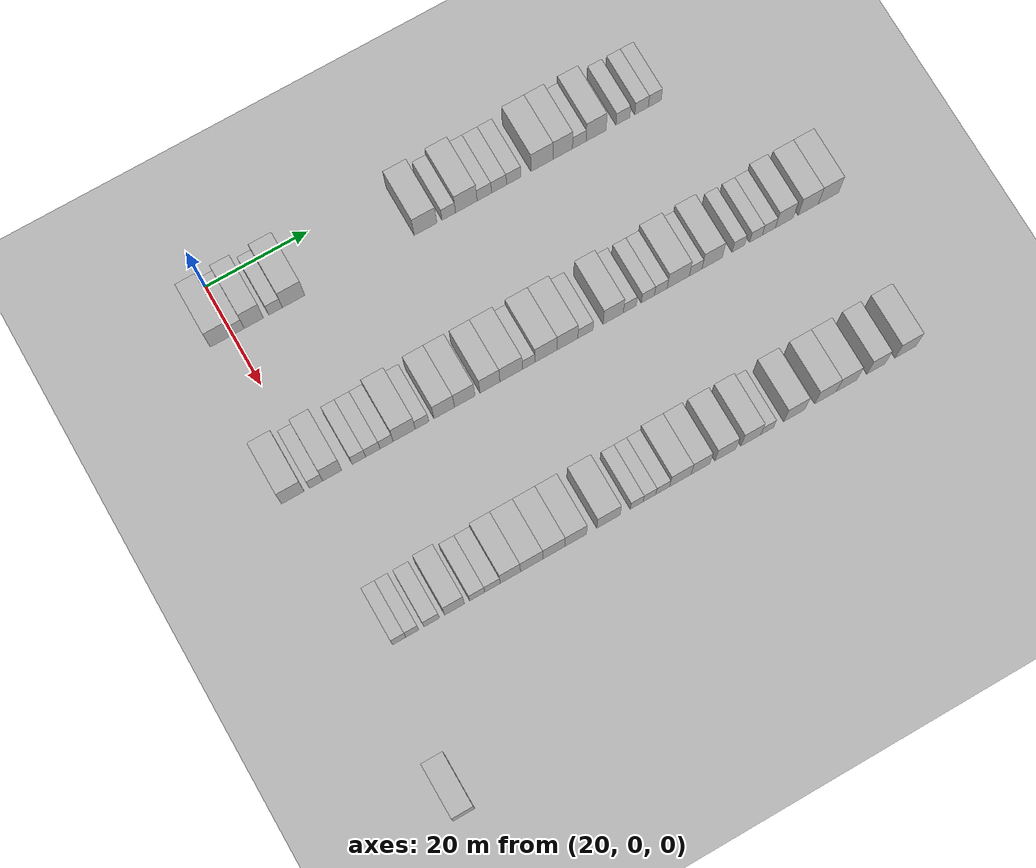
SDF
<sdf version="1.6">
 <world name="default">
  <include><name>ground_plane_1</name><uri>model://HANNAS_ground_plane</uri></include>
  <include>
   <name>ground_plane_2</name>
   <uri>model://HANNAS_ground_plane</uri>
   <pose>100 0 0  0 0 0</pose>
  </include>
  <model name="building_107">
   <static>1</static>
   <pose>25.0000 -2.3932 0 0.000000 0.000000 0.000000</pose>
   <link name="link">
    <pose>0 0 4.50 0 0 0</pose>
    <collision name="collision"><geometry><box><size>10.0000 3.8231 9.0000</size></box></geometry></collision>
    <visual name="visual">
     <cast_shadows>0</cast_shadows>
     <geometry><box><size>10.0000 3.8231 9.0000</size></box></geometry>
     <material>
      <script>
       <uri>model://HANNAS_wall/materials/scripts</uri>
       <uri>model://HANNAS_wall/materials/textures</uri>
       <name>vrc/HANNAS_wall</name>
      </script>
     </material>
    </visual>
   </link>
  </model>
  <model name="building_108">
   <static>1</static>
   <pose>25.0000 0.8979 0 0.000000 0.000000 0.000000</pose>
   <link name="link">
    <pose>0 0 3.00 0 0 0</pose>
    <collision name="collision"><geometry><box><size>10.0000 2.7591 6.0000</size></box></geometry></collision>
    <visual name="visual">
     <cast_shadows>0</cast_shadows>
     <geometry><box><size>10.0000 2.7591 6.0000</size></box></geometry>
     <material>
      <script>
       <uri>model://HANNAS_wall/materials/scripts</uri>
       <uri>model://HANNAS_wall/materials/textures</uri>
       <name>vrc/HANNAS_wall</name>
      </script>
     </material>
    </visual>
   </link>
  </model>
  <model name="building_109">
   <static>1</static>
   <pose>25.0000 4.1473 0 0.000000 0.000000 0.000000</pose>
   <link name="link">
    <pose>0 0 4.50 0 0 0</pose>
    <collision name="collision"><geometry><box><size>10.0000 3.7397 9.0000</size></box></geometry></collision>
    <visual name="visual">
     <cast_shadows>0</cast_shadows>
     <geometry><box><size>10.0000 3.7397 9.0000</size></box></geometry>
     <material>
      <script>
       <uri>model://HANNAS_wall/materials/scripts</uri>
       <uri>model://HANNAS_wall/materials/textures</uri>
       <name>vrc/HANNAS_wall</name>
      </script>
     </material>
    </visual>
   </link>
  </model>
  <model name="building_110">
   <static>1</static>
   <pose>25.0000 8.3387 0 0.000000 0.000000 0.000000</pose>
   <link name="link">
    <pose>0 0 3.00 0 0 0</pose>
    <collision name="collision"><geometry><box><size>10.0000 2.6432 6.0000</size></box></geometry></collision>
    <visual name="visual">
     <cast_shadows>0</cast_shadows>
     <geometry><box><size>10.0000 2.6432 6.0000</size></box></geometry>
     <material>
      <script>
       <uri>model://HANNAS_wall/materials/scripts</uri>
       <uri>model://HANNAS_wall/materials/textures</uri>
       <name>vrc/HANNAS_wall</name>
      </script>
     </material>
    </visual>
   </link>
  </model>
  <model name="building_111">
   <static>1</static>
   <pose>25.0000 11.8502 0 0.000000 0.000000 0.000000</pose>
   <link name="link">
    <pose>0 0 4.50 0 0 0</pose>
    <collision name="collision"><geometry><box><size>10.0000 4.3797 9.0000</size></box></geometry></collision>
    <visual name="visual">
     <cast_shadows>0</cast_shadows>
     <geometry><box><size>10.0000 4.3797 9.0000</size></box></geometry>
     <material>
      <script>
       <uri>model://HANNAS_wall/materials/scripts</uri>
       <uri>model://HANNAS_wall/materials/textures</uri>
       <name>vrc/HANNAS_wall</name>
      </script>
     </material>
    </visual>
   </link>
  </model>
  <model name="building_112">
   <static>1</static>
   <pose>25.0000 37.7808 0 0.000000 0.000000 0.000000</pose>
   <link name="link">
    <pose>0 0 4.50 0 0 0</pose>
    <collision name="collision"><geometry><box><size>10.0000 4.4939 9.0000</size></box></geometry></collision>
    <visual name="visual">
     <cast_shadows>0</cast_shadows>
     <geometry><box><size>10.0000 4.4939 9.0000</size></box></geometry>
     <material>
      <script>
       <uri>model://HANNAS_wall/materials/scripts</uri>
       <uri>model://HANNAS_wall/materials/textures</uri>
       <name>vrc/HANNAS_wall</name>
      </script>
     </material>
    </visual>
   </link>
  </model>
  <model name="building_113">
   <static>1</static>
   <pose>25.0000 42.3702 0 0.000000 0.000000 0.000000</pose>
   <link name="link">
    <pose>0 0 3.00 0 0 0</pose>
    <collision name="collision"><geometry><box><size>10.0000 2.6850 6.0000</size></box></geometry></collision>
    <visual name="visual">
     <cast_shadows>0</cast_shadows>
     <geometry><box><size>10.0000 2.6850 6.0000</size></box></geometry>
     <material>
      <script>
       <uri>model://HANNAS_wall/materials/scripts</uri>
       <uri>model://HANNAS_wall/materials/textures</uri>
       <name>vrc/HANNAS_wall</name>
      </script>
     </material>
    </visual>
   </link>
  </model>
  <model name="building_114">
   <static>1</static>
   <pose>25.0000 45.8587 0 0.000000 0.000000 0.000000</pose>
   <link name="link">
    <pose>0 0 4.50 0 0 0</pose>
    <collision name="collision"><geometry><box><size>10.0000 4.2920 9.0000</size></box></geometry></collision>
    <visual name="visual">
     <cast_shadows>0</cast_shadows>
     <geometry><box><size>10.0000 4.2920 9.0000</size></box></geometry>
     <material>
      <script>
       <uri>model://HANNAS_wall/materials/scripts</uri>
       <uri>model://HANNAS_wall/materials/textures</uri>
       <name>vrc/HANNAS_wall</name>
      </script>
     </material>
    </visual>
   </link>
  </model>
  <model name="building_115">
   <static>1</static>
   <pose>25.0000 49.4416 0 0.000000 0.000000 0.000000</pose>
   <link name="link">
    <pose>0 0 3.00 0 0 0</pose>
    <collision name="collision"><geometry><box><size>10.0000 2.8737 6.0000</size></box></geometry></collision>
    <visual name="visual">
     <cast_shadows>0</cast_shadows>
     <geometry><box><size>10.0000 2.8737 6.0000</size></box></geometry>
     <material>
      <script>
       <uri>model://HANNAS_wall/materials/scripts</uri>
       <uri>model://HANNAS_wall/materials/textures</uri>
       <name>vrc/HANNAS_wall</name>
      </script>
     </material>
    </visual>
   </link>
  </model>
  <model name="building_116">
   <static>1</static>
   <pose>25.0000 52.3666 0 0.000000 0.000000 0.000000</pose>
   <link name="link">
    <pose>0 0 3.00 0 0 0</pose>
    <collision name="collision"><geometry><box><size>10.0000 2.9764 6.0000</size></box></geometry></collision>
    <visual name="visual">
     <cast_shadows>0</cast_shadows>
     <geometry><box><size>10.0000 2.9764 6.0000</size></box></geometry>
     <material>
      <script>
       <uri>model://HANNAS_wall/materials/scripts</uri>
       <uri>model://HANNAS_wall/materials/textures</uri>
       <name>vrc/HANNAS_wall</name>
      </script>
     </material>
    </visual>
   </link>
  </model>
  <model name="building_117">
   <static>1</static>
   <pose>25.0000 55.3004 0 0.000000 0.000000 0.000000</pose>
   <link name="link">
    <pose>0 0 3.00 0 0 0</pose>
    <collision name="collision"><geometry><box><size>10.0000 2.8911 6.0000</size></box></geometry></collision>
    <visual name="visual">
     <cast_shadows>0</cast_shadows>
     <geometry><box><size>10.0000 2.8911 6.0000</size></box></geometry>
     <material>
      <script>
       <uri>model://HANNAS_wall/materials/scripts</uri>
       <uri>model://HANNAS_wall/materials/textures</uri>
       <name>vrc/HANNAS_wall</name>
      </script>
     </material>
    </visual>
   </link>
  </model>
  <model name="building_118">
   <static>1</static>
   <pose>25.0000 60.9635 0 0.000000 0.000000 0.000000</pose>
   <link name="link">
    <pose>0 0 4.50 0 0 0</pose>
    <collision name="collision"><geometry><box><size>10.0000 4.4350 9.0000</size></box></geometry></collision>
    <visual name="visual">
     <cast_shadows>0</cast_shadows>
     <geometry><box><size>10.0000 4.4350 9.0000</size></box></geometry>
     <material>
      <script>
       <uri>model://HANNAS_wall/materials/scripts</uri>
       <uri>model://HANNAS_wall/materials/textures</uri>
       <name>vrc/HANNAS_wall</name>
      </script>
     </material>
    </visual>
   </link>
  </model>
  <model name="building_119">
   <static>1</static>
   <pose>25.0000 65.1294 0 0.000000 0.000000 0.000000</pose>
   <link name="link">
    <pose>0 0 4.50 0 0 0</pose>
    <collision name="collision"><geometry><box><size>10.0000 3.8967 9.0000</size></box></geometry></collision>
    <visual name="visual">
     <cast_shadows>0</cast_shadows>
     <geometry><box><size>10.0000 3.8967 9.0000</size></box></geometry>
     <material>
      <script>
       <uri>model://HANNAS_wall/materials/scripts</uri>
       <uri>model://HANNAS_wall/materials/textures</uri>
       <name>vrc/HANNAS_wall</name>
      </script>
     </material>
    </visual>
   </link>
  </model>
  <model name="building_120">
   <static>1</static>
   <pose>25.0000 68.4488 0 0.000000 0.000000 0.000000</pose>
   <link name="link">
    <pose>0 0 3.00 0 0 0</pose>
    <collision name="collision"><geometry><box><size>10.0000 2.7421 6.0000</size></box></geometry></collision>
    <visual name="visual">
     <cast_shadows>0</cast_shadows>
     <geometry><box><size>10.0000 2.7421 6.0000</size></box></geometry>
     <material>
      <script>
       <uri>model://HANNAS_wall/materials/scripts</uri>
       <uri>model://HANNAS_wall/materials/textures</uri>
       <name>vrc/HANNAS_wall</name>
      </script>
     </material>
    </visual>
   </link>
  </model>
  <model name="building_121">
   <static>1</static>
   <pose>25.0000 71.8371 0 0.000000 0.000000 0.000000</pose>
   <link name="link">
    <pose>0 0 4.50 0 0 0</pose>
    <collision name="collision"><geometry><box><size>10.0000 4.0346 9.0000</size></box></geometry></collision>
    <visual name="visual">
     <cast_shadows>0</cast_shadows>
     <geometry><box><size>10.0000 4.0346 9.0000</size></box></geometry>
     <material>
      <script>
       <uri>model://HANNAS_wall/materials/scripts</uri>
       <uri>model://HANNAS_wall/materials/textures</uri>
       <name>vrc/HANNAS_wall</name>
      </script>
     </material>
    </visual>
   </link>
  </model>
  <model name="building_122">
   <static>1</static>
   <pose>25.0000 77.2639 0 0.000000 0.000000 0.000000</pose>
   <link name="link">
    <pose>0 0 3.00 0 0 0</pose>
    <collision name="collision"><geometry><box><size>10.0000 2.8190 6.0000</size></box></geometry></collision>
    <visual name="visual">
     <cast_shadows>0</cast_shadows>
     <geometry><box><size>10.0000 2.8190 6.0000</size></box></geometry>
     <material>
      <script>
       <uri>model://HANNAS_wall/materials/scripts</uri>
       <uri>model://HANNAS_wall/materials/textures</uri>
       <name>vrc/HANNAS_wall</name>
      </script>
     </material>
    </visual>
   </link>
  </model>
  <model name="building_123">
   <static>1</static>
   <pose>25.0000 81.0404 0 0.000000 0.000000 0.000000</pose>
   <link name="link">
    <pose>0 0 3.00 0 0 0</pose>
    <collision name="collision"><geometry><box><size>10.0000 2.7340 6.0000</size></box></geometry></collision>
    <visual name="visual">
     <cast_shadows>0</cast_shadows>
     <geometry><box><size>10.0000 2.7340 6.0000</size></box></geometry>
     <material>
      <script>
       <uri>model://HANNAS_wall/materials/scripts</uri>
       <uri>model://HANNAS_wall/materials/textures</uri>
       <name>vrc/HANNAS_wall</name>
      </script>
     </material>
    </visual>
   </link>
  </model>
  <model name="building_124">
   <static>1</static>
   <pose>25.0000 83.7193 0 0.000000 0.000000 0.000000</pose>
   <link name="link">
    <pose>0 0 3.00 0 0 0</pose>
    <collision name="collision"><geometry><box><size>10.0000 2.6240 6.0000</size></box></geometry></collision>
    <visual name="visual">
     <cast_shadows>0</cast_shadows>
     <geometry><box><size>10.0000 2.6240 6.0000</size></box></geometry>
     <material>
      <script>
       <uri>model://HANNAS_wall/materials/scripts</uri>
       <uri>model://HANNAS_wall/materials/textures</uri>
       <name>vrc/HANNAS_wall</name>
      </script>
     </material>
    </visual>
   </link>
  </model>
  <model name="building_316">
   <static>1</static>
   <pose>55.0000 -4.5520 0 0.000000 0.000000 0.000000</pose>
   <link name="link">
    <pose>0 0 4.50 0 0 0</pose>
    <collision name="collision"><geometry><box><size>10.0000 4.3204 9.0000</size></box></geometry></collision>
    <visual name="visual">
     <cast_shadows>0</cast_shadows>
     <geometry><box><size>10.0000 4.3204 9.0000</size></box></geometry>
     <material>
      <script>
       <uri>model://HANNAS_wall/materials/scripts</uri>
       <uri>model://HANNAS_wall/materials/textures</uri>
       <name>vrc/HANNAS_wall</name>
      </script>
     </material>
    </visual>
   </link>
  </model>
  <model name="building_317">
   <static>1</static>
   <pose>55.0000 -0.1175 0 0.000000 0.000000 0.000000</pose>
   <link name="link">
    <pose>0 0 3.00 0 0 0</pose>
    <collision name="collision"><geometry><box><size>10.0000 2.5487 6.0000</size></box></geometry></collision>
    <visual name="visual">
     <cast_shadows>0</cast_shadows>
     <geometry><box><size>10.0000 2.5487 6.0000</size></box></geometry>
     <material>
      <script>
       <uri>model://HANNAS_wall/materials/scripts</uri>
       <uri>model://HANNAS_wall/materials/textures</uri>
       <name>vrc/HANNAS_wall</name>
      </script>
     </material>
    </visual>
   </link>
  </model>
  <model name="building_318">
   <static>1</static>
   <pose>55.0000 2.9823 0 0.000000 0.000000 0.000000</pose>
   <link name="link">
    <pose>0 0 4.50 0 0 0</pose>
    <collision name="collision"><geometry><box><size>10.0000 3.6508 9.0000</size></box></geometry></collision>
    <visual name="visual">
     <cast_shadows>0</cast_shadows>
     <geometry><box><size>10.0000 3.6508 9.0000</size></box></geometry>
     <material>
      <script>
       <uri>model://HANNAS_wall/materials/scripts</uri>
       <uri>model://HANNAS_wall/materials/textures</uri>
       <name>vrc/HANNAS_wall</name>
      </script>
     </material>
    </visual>
   </link>
  </model>
  <model name="building_319">
   <static>1</static>
   <pose>55.0000 8.0975 0 0.000000 0.000000 0.000000</pose>
   <link name="link">
    <pose>0 0 3.00 0 0 0</pose>
    <collision name="collision"><geometry><box><size>10.0000 2.5796 6.0000</size></box></geometry></collision>
    <visual name="visual">
     <cast_shadows>0</cast_shadows>
     <geometry><box><size>10.0000 2.5796 6.0000</size></box></geometry>
     <material>
      <script>
       <uri>model://HANNAS_wall/materials/scripts</uri>
       <uri>model://HANNAS_wall/materials/textures</uri>
       <name>vrc/HANNAS_wall</name>
      </script>
     </material>
    </visual>
   </link>
  </model>
  <model name="building_320">
   <static>1</static>
   <pose>55.0000 10.7872 0 0.000000 0.000000 0.000000</pose>
   <link name="link">
    <pose>0 0 3.00 0 0 0</pose>
    <collision name="collision"><geometry><box><size>10.0000 2.7998 6.0000</size></box></geometry></collision>
    <visual name="visual">
     <cast_shadows>0</cast_shadows>
     <geometry><box><size>10.0000 2.7998 6.0000</size></box></geometry>
     <material>
      <script>
       <uri>model://HANNAS_wall/materials/scripts</uri>
       <uri>model://HANNAS_wall/materials/textures</uri>
       <name>vrc/HANNAS_wall</name>
      </script>
     </material>
    </visual>
   </link>
  </model>
  <model name="building_321">
   <static>1</static>
   <pose>55.0000 13.4524 0 0.000000 0.000000 0.000000</pose>
   <link name="link">
    <pose>0 0 3.00 0 0 0</pose>
    <collision name="collision"><geometry><box><size>10.0000 2.5305 6.0000</size></box></geometry></collision>
    <visual name="visual">
     <cast_shadows>0</cast_shadows>
     <geometry><box><size>10.0000 2.5305 6.0000</size></box></geometry>
     <material>
      <script>
       <uri>model://HANNAS_wall/materials/scripts</uri>
       <uri>model://HANNAS_wall/materials/textures</uri>
       <name>vrc/HANNAS_wall</name>
      </script>
     </material>
    </visual>
   </link>
  </model>
  <model name="building_322">
   <static>1</static>
   <pose>55.0000 16.8531 0 0.000000 0.000000 0.000000</pose>
   <link name="link">
    <pose>0 0 4.50 0 0 0</pose>
    <collision name="collision"><geometry><box><size>10.0000 4.2708 9.0000</size></box></geometry></collision>
    <visual name="visual">
     <cast_shadows>0</cast_shadows>
     <geometry><box><size>10.0000 4.2708 9.0000</size></box></geometry>
     <material>
      <script>
       <uri>model://HANNAS_wall/materials/scripts</uri>
       <uri>model://HANNAS_wall/materials/textures</uri>
       <name>vrc/HANNAS_wall</name>
      </script>
     </material>
    </visual>
   </link>
  </model>
  <model name="building_323">
   <static>1</static>
   <pose>55.0000 20.2973 0 0.000000 0.000000 0.000000</pose>
   <link name="link">
    <pose>0 0 3.00 0 0 0</pose>
    <collision name="collision"><geometry><box><size>10.0000 2.6176 6.0000</size></box></geometry></collision>
    <visual name="visual">
     <cast_shadows>0</cast_shadows>
     <geometry><box><size>10.0000 2.6176 6.0000</size></box></geometry>
     <material>
      <script>
       <uri>model://HANNAS_wall/materials/scripts</uri>
       <uri>model://HANNAS_wall/materials/textures</uri>
       <name>vrc/HANNAS_wall</name>
      </script>
     </material>
    </visual>
   </link>
  </model>
  <model name="building_324">
   <static>1</static>
   <pose>55.0000 24.5956 0 0.000000 0.000000 0.000000</pose>
   <link name="link">
    <pose>0 0 4.50 0 0 0</pose>
    <collision name="collision"><geometry><box><size>10.0000 3.9791 9.0000</size></box></geometry></collision>
    <visual name="visual">
     <cast_shadows>0</cast_shadows>
     <geometry><box><size>10.0000 3.9791 9.0000</size></box></geometry>
     <material>
      <script>
       <uri>model://HANNAS_wall/materials/scripts</uri>
       <uri>model://HANNAS_wall/materials/textures</uri>
       <name>vrc/HANNAS_wall</name>
      </script>
     </material>
    </visual>
   </link>
  </model>
  <model name="building_325">
   <static>1</static>
   <pose>55.0000 28.5663 0 0.000000 0.000000 0.000000</pose>
   <link name="link">
    <pose>0 0 4.50 0 0 0</pose>
    <collision name="collision"><geometry><box><size>10.0000 3.9622 9.0000</size></box></geometry></collision>
    <visual name="visual">
     <cast_shadows>0</cast_shadows>
     <geometry><box><size>10.0000 3.9622 9.0000</size></box></geometry>
     <material>
      <script>
       <uri>model://HANNAS_wall/materials/scripts</uri>
       <uri>model://HANNAS_wall/materials/textures</uri>
       <name>vrc/HANNAS_wall</name>
      </script>
     </material>
    </visual>
   </link>
  </model>
  <model name="building_326">
   <static>1</static>
   <pose>55.0000 33.4936 0 0.000000 0.000000 0.000000</pose>
   <link name="link">
    <pose>0 0 4.50 0 0 0</pose>
    <collision name="collision"><geometry><box><size>10.0000 3.8924 9.0000</size></box></geometry></collision>
    <visual name="visual">
     <cast_shadows>0</cast_shadows>
     <geometry><box><size>10.0000 3.8924 9.0000</size></box></geometry>
     <material>
      <script>
       <uri>model://HANNAS_wall/materials/scripts</uri>
       <uri>model://HANNAS_wall/materials/textures</uri>
       <name>vrc/HANNAS_wall</name>
      </script>
     </material>
    </visual>
   </link>
  </model>
  <model name="building_327">
   <static>1</static>
   <pose>55.0000 37.6419 0 0.000000 0.000000 0.000000</pose>
   <link name="link">
    <pose>0 0 4.50 0 0 0</pose>
    <collision name="collision"><geometry><box><size>10.0000 4.4041 9.0000</size></box></geometry></collision>
    <visual name="visual">
     <cast_shadows>0</cast_shadows>
     <geometry><box><size>10.0000 4.4041 9.0000</size></box></geometry>
     <material>
      <script>
       <uri>model://HANNAS_wall/materials/scripts</uri>
       <uri>model://HANNAS_wall/materials/textures</uri>
       <name>vrc/HANNAS_wall</name>
      </script>
     </material>
    </visual>
   </link>
  </model>
  <model name="building_328">
   <static>1</static>
   <pose>55.0000 41.0681 0 0.000000 0.000000 0.000000</pose>
   <link name="link">
    <pose>0 0 3.00 0 0 0</pose>
    <collision name="collision"><geometry><box><size>10.0000 2.4485 6.0000</size></box></geometry></collision>
    <visual name="visual">
     <cast_shadows>0</cast_shadows>
     <geometry><box><size>10.0000 2.4485 6.0000</size></box></geometry>
     <material>
      <script>
       <uri>model://HANNAS_wall/materials/scripts</uri>
       <uri>model://HANNAS_wall/materials/textures</uri>
       <name>vrc/HANNAS_wall</name>
      </script>
     </material>
    </visual>
   </link>
  </model>
  <model name="building_329">
   <static>1</static>
   <pose>55.0000 44.4635 0 0.000000 0.000000 0.000000</pose>
   <link name="link">
    <pose>0 0 4.50 0 0 0</pose>
    <collision name="collision"><geometry><box><size>10.0000 4.3422 9.0000</size></box></geometry></collision>
    <visual name="visual">
     <cast_shadows>0</cast_shadows>
     <geometry><box><size>10.0000 4.3422 9.0000</size></box></geometry>
     <material>
      <script>
       <uri>model://HANNAS_wall/materials/scripts</uri>
       <uri>model://HANNAS_wall/materials/textures</uri>
       <name>vrc/HANNAS_wall</name>
      </script>
     </material>
    </visual>
   </link>
  </model>
  <model name="building_330">
   <static>1</static>
   <pose>55.0000 48.6864 0 0.000000 0.000000 0.000000</pose>
   <link name="link">
    <pose>0 0 4.50 0 0 0</pose>
    <collision name="collision"><geometry><box><size>10.0000 4.1036 9.0000</size></box></geometry></collision>
    <visual name="visual">
     <cast_shadows>0</cast_shadows>
     <geometry><box><size>10.0000 4.1036 9.0000</size></box></geometry>
     <material>
      <script>
       <uri>model://HANNAS_wall/materials/scripts</uri>
       <uri>model://HANNAS_wall/materials/textures</uri>
       <name>vrc/HANNAS_wall</name>
      </script>
     </material>
    </visual>
   </link>
  </model>
  <model name="building_331">
   <static>1</static>
   <pose>55.0000 52.2373 0 0.000000 0.000000 0.000000</pose>
   <link name="link">
    <pose>0 0 3.00 0 0 0</pose>
    <collision name="collision"><geometry><box><size>10.0000 2.9982 6.0000</size></box></geometry></collision>
    <visual name="visual">
     <cast_shadows>0</cast_shadows>
     <geometry><box><size>10.0000 2.9982 6.0000</size></box></geometry>
     <material>
      <script>
       <uri>model://HANNAS_wall/materials/scripts</uri>
       <uri>model://HANNAS_wall/materials/textures</uri>
       <name>vrc/HANNAS_wall</name>
      </script>
     </material>
    </visual>
   </link>
  </model>
  <model name="building_332">
   <static>1</static>
   <pose>55.0000 57.7343 0 0.000000 0.000000 0.000000</pose>
   <link name="link">
    <pose>0 0 4.50 0 0 0</pose>
    <collision name="collision"><geometry><box><size>10.0000 3.9958 9.0000</size></box></geometry></collision>
    <visual name="visual">
     <cast_shadows>0</cast_shadows>
     <geometry><box><size>10.0000 3.9958 9.0000</size></box></geometry>
     <material>
      <script>
       <uri>model://HANNAS_wall/materials/scripts</uri>
       <uri>model://HANNAS_wall/materials/textures</uri>
       <name>vrc/HANNAS_wall</name>
      </script>
     </material>
    </visual>
   </link>
  </model>
  <model name="building_333">
   <static>1</static>
   <pose>55.0000 61.0189 0 0.000000 0.000000 0.000000</pose>
   <link name="link">
    <pose>0 0 3.00 0 0 0</pose>
    <collision name="collision"><geometry><box><size>10.0000 2.5733 6.0000</size></box></geometry></collision>
    <visual name="visual">
     <cast_shadows>0</cast_shadows>
     <geometry><box><size>10.0000 2.5733 6.0000</size></box></geometry>
     <material>
      <script>
       <uri>model://HANNAS_wall/materials/scripts</uri>
       <uri>model://HANNAS_wall/materials/textures</uri>
       <name>vrc/HANNAS_wall</name>
      </script>
     </material>
    </visual>
   </link>
  </model>
  <model name="building_334">
   <static>1</static>
   <pose>55.0000 64.6075 0 0.000000 0.000000 0.000000</pose>
   <link name="link">
    <pose>0 0 3.00 0 0 0</pose>
    <collision name="collision"><geometry><box><size>10.0000 2.6039 6.0000</size></box></geometry></collision>
    <visual name="visual">
     <cast_shadows>0</cast_shadows>
     <geometry><box><size>10.0000 2.6039 6.0000</size></box></geometry>
     <material>
      <script>
       <uri>model://HANNAS_wall/materials/scripts</uri>
       <uri>model://HANNAS_wall/materials/textures</uri>
       <name>vrc/HANNAS_wall</name>
      </script>
     </material>
    </visual>
   </link>
  </model>
  <model name="building_335">
   <static>1</static>
   <pose>55.0000 67.1858 0 0.000000 0.000000 0.000000</pose>
   <link name="link">
    <pose>0 0 3.00 0 0 0</pose>
    <collision name="collision"><geometry><box><size>10.0000 2.5527 6.0000</size></box></geometry></collision>
    <visual name="visual">
     <cast_shadows>0</cast_shadows>
     <geometry><box><size>10.0000 2.5527 6.0000</size></box></geometry>
     <material>
      <script>
       <uri>model://HANNAS_wall/materials/scripts</uri>
       <uri>model://HANNAS_wall/materials/textures</uri>
       <name>vrc/HANNAS_wall</name>
      </script>
     </material>
    </visual>
   </link>
  </model>
  <model name="building_336">
   <static>1</static>
   <pose>55.0000 70.6752 0 0.000000 0.000000 0.000000</pose>
   <link name="link">
    <pose>0 0 4.50 0 0 0</pose>
    <collision name="collision"><geometry><box><size>10.0000 4.4261 9.0000</size></box></geometry></collision>
    <visual name="visual">
     <cast_shadows>0</cast_shadows>
     <geometry><box><size>10.0000 4.4261 9.0000</size></box></geometry>
     <material>
      <script>
       <uri>model://HANNAS_wall/materials/scripts</uri>
       <uri>model://HANNAS_wall/materials/textures</uri>
       <name>vrc/HANNAS_wall</name>
      </script>
     </material>
    </visual>
   </link>
  </model>
  <model name="building_337">
   <static>1</static>
   <pose>55.0000 74.1413 0 0.000000 0.000000 0.000000</pose>
   <link name="link">
    <pose>0 0 3.00 0 0 0</pose>
    <collision name="collision"><geometry><box><size>10.0000 2.5062 6.0000</size></box></geometry></collision>
    <visual name="visual">
     <cast_shadows>0</cast_shadows>
     <geometry><box><size>10.0000 2.5062 6.0000</size></box></geometry>
     <material>
      <script>
       <uri>model://HANNAS_wall/materials/scripts</uri>
       <uri>model://HANNAS_wall/materials/textures</uri>
       <name>vrc/HANNAS_wall</name>
      </script>
     </material>
    </visual>
   </link>
  </model>
  <model name="building_338">
   <static>1</static>
   <pose>55.0000 77.4330 0 0.000000 0.000000 0.000000</pose>
   <link name="link">
    <pose>0 0 4.50 0 0 0</pose>
    <collision name="collision"><geometry><box><size>10.0000 4.0772 9.0000</size></box></geometry></collision>
    <visual name="visual">
     <cast_shadows>0</cast_shadows>
     <geometry><box><size>10.0000 4.0772 9.0000</size></box></geometry>
     <material>
      <script>
       <uri>model://HANNAS_wall/materials/scripts</uri>
       <uri>model://HANNAS_wall/materials/textures</uri>
       <name>vrc/HANNAS_wall</name>
      </script>
     </material>
    </visual>
   </link>
  </model>
  <model name="building_339">
   <static>1</static>
   <pose>55.0000 82.7222 0 0.000000 0.000000 0.000000</pose>
   <link name="link">
    <pose>0 0 3.00 0 0 0</pose>
    <collision name="collision"><geometry><box><size>10.0000 2.5012 6.0000</size></box></geometry></collision>
    <visual name="visual">
     <cast_shadows>0</cast_shadows>
     <geometry><box><size>10.0000 2.5012 6.0000</size></box></geometry>
     <material>
      <script>
       <uri>model://HANNAS_wall/materials/scripts</uri>
       <uri>model://HANNAS_wall/materials/textures</uri>
       <name>vrc/HANNAS_wall</name>
      </script>
     </material>
    </visual>
   </link>
  </model>
  <model name="building_340">
   <static>1</static>
   <pose>55.0000 86.2524 0 0.000000 0.000000 0.000000</pose>
   <link name="link">
    <pose>0 0 3.00 0 0 0</pose>
    <collision name="collision"><geometry><box><size>10.0000 2.5592 6.0000</size></box></geometry></collision>
    <visual name="visual">
     <cast_shadows>0</cast_shadows>
     <geometry><box><size>10.0000 2.5592 6.0000</size></box></geometry>
     <material>
      <script>
       <uri>model://HANNAS_wall/materials/scripts</uri>
       <uri>model://HANNAS_wall/materials/textures</uri>
       <name>vrc/HANNAS_wall</name>
      </script>
     </material>
    </visual>
   </link>
  </model>
  <model name="building_341">
   <static>1</static>
   <pose>55.0000 88.8455 0 0.000000 0.000000 0.000000</pose>
   <link name="link">
    <pose>0 0 3.00 0 0 0</pose>
    <collision name="collision"><geometry><box><size>10.0000 2.6269 6.0000</size></box></geometry></collision>
    <visual name="visual">
     <cast_shadows>0</cast_shadows>
     <geometry><box><size>10.0000 2.6269 6.0000</size></box></geometry>
     <material>
      <script>
       <uri>model://HANNAS_wall/materials/scripts</uri>
       <uri>model://HANNAS_wall/materials/textures</uri>
       <name>vrc/HANNAS_wall</name>
      </script>
     </material>
    </visual>
   </link>
  </model>
  <model name="building_342">
   <static>1</static>
   <pose>55.0000 91.9741 0 0.000000 0.000000 0.000000</pose>
   <link name="link">
    <pose>0 0 4.50 0 0 0</pose>
    <collision name="collision"><geometry><box><size>10.0000 3.6304 9.0000</size></box></geometry></collision>
    <visual name="visual">
     <cast_shadows>0</cast_shadows>
     <geometry><box><size>10.0000 3.6304 9.0000</size></box></geometry>
     <material>
      <script>
       <uri>model://HANNAS_wall/materials/scripts</uri>
       <uri>model://HANNAS_wall/materials/textures</uri>
       <name>vrc/HANNAS_wall</name>
      </script>
     </material>
    </visual>
   </link>
  </model>
  <model name="building_343">
   <static>1</static>
   <pose>55.0000 96.8448 0 0.000000 0.000000 0.000000</pose>
   <link name="link">
    <pose>0 0 4.50 0 0 0</pose>
    <collision name="collision"><geometry><box><size>10.0000 4.1109 9.0000</size></box></geometry></collision>
    <visual name="visual">
     <cast_shadows>0</cast_shadows>
     <geometry><box><size>10.0000 4.1109 9.0000</size></box></geometry>
     <material>
      <script>
       <uri>model://HANNAS_wall/materials/scripts</uri>
       <uri>model://HANNAS_wall/materials/textures</uri>
       <name>vrc/HANNAS_wall</name>
      </script>
     </material>
    </visual>
   </link>
  </model>
  <model name="building_344">
   <static>1</static>
   <pose>55.0000 100.9509 0 0.000000 0.000000 0.000000</pose>
   <link name="link">
    <pose>0 0 4.50 0 0 0</pose>
    <collision name="collision"><geometry><box><size>10.0000 4.1012 9.0000</size></box></geometry></collision>
    <visual name="visual">
     <cast_shadows>0</cast_shadows>
     <geometry><box><size>10.0000 4.1012 9.0000</size></box></geometry>
     <material>
      <script>
       <uri>model://HANNAS_wall/materials/scripts</uri>
       <uri>model://HANNAS_wall/materials/textures</uri>
       <name>vrc/HANNAS_wall</name>
      </script>
     </material>
    </visual>
   </link>
  </model>
  <model name="building_544">
   <static>1</static>
   <pose>85.0000 -0.8245 0 0.000000 0.000000 0.000000</pose>
   <link name="link">
    <pose>0 0 3.00 0 0 0</pose>
    <collision name="collision"><geometry><box><size>10.0000 2.5236 6.0000</size></box></geometry></collision>
    <visual name="visual">
     <cast_shadows>0</cast_shadows>
     <geometry><box><size>10.0000 2.5236 6.0000</size></box></geometry>
     <material>
      <script>
       <uri>model://HANNAS_wall/materials/scripts</uri>
       <uri>model://HANNAS_wall/materials/textures</uri>
       <name>vrc/HANNAS_wall</name>
      </script>
     </material>
    </visual>
   </link>
  </model>
  <model name="building_545">
   <static>1</static>
   <pose>85.0000 1.6556 0 0.000000 0.000000 0.000000</pose>
   <link name="link">
    <pose>0 0 3.00 0 0 0</pose>
    <collision name="collision"><geometry><box><size>10.0000 2.4366 6.0000</size></box></geometry></collision>
    <visual name="visual">
     <cast_shadows>0</cast_shadows>
     <geometry><box><size>10.0000 2.4366 6.0000</size></box></geometry>
     <material>
      <script>
       <uri>model://HANNAS_wall/materials/scripts</uri>
       <uri>model://HANNAS_wall/materials/textures</uri>
       <name>vrc/HANNAS_wall</name>
      </script>
     </material>
    </visual>
   </link>
  </model>
  <model name="building_546">
   <static>1</static>
   <pose>85.0000 5.3306 0 0.000000 0.000000 0.000000</pose>
   <link name="link">
    <pose>0 0 3.00 0 0 0</pose>
    <collision name="collision"><geometry><box><size>10.0000 2.9133 6.0000</size></box></geometry></collision>
    <visual name="visual">
     <cast_shadows>0</cast_shadows>
     <geometry><box><size>10.0000 2.9133 6.0000</size></box></geometry>
     <material>
      <script>
       <uri>model://HANNAS_wall/materials/scripts</uri>
       <uri>model://HANNAS_wall/materials/textures</uri>
       <name>vrc/HANNAS_wall</name>
      </script>
     </material>
    </visual>
   </link>
  </model>
  <model name="building_547">
   <static>1</static>
   <pose>85.0000 9.6694 0 0.000000 0.000000 0.000000</pose>
   <link name="link">
    <pose>0 0 4.50 0 0 0</pose>
    <collision name="collision"><geometry><box><size>10.0000 3.7643 9.0000</size></box></geometry></collision>
    <visual name="visual">
     <cast_shadows>0</cast_shadows>
     <geometry><box><size>10.0000 3.7643 9.0000</size></box></geometry>
     <material>
      <script>
       <uri>model://HANNAS_wall/materials/scripts</uri>
       <uri>model://HANNAS_wall/materials/textures</uri>
       <name>vrc/HANNAS_wall</name>
      </script>
     </material>
    </visual>
   </link>
  </model>
  <model name="building_548">
   <static>1</static>
   <pose>85.0000 13.9886 0 0.000000 0.000000 0.000000</pose>
   <link name="link">
    <pose>0 0 3.00 0 0 0</pose>
    <collision name="collision"><geometry><box><size>10.0000 2.8742 6.0000</size></box></geometry></collision>
    <visual name="visual">
     <cast_shadows>0</cast_shadows>
     <geometry><box><size>10.0000 2.8742 6.0000</size></box></geometry>
     <material>
      <script>
       <uri>model://HANNAS_wall/materials/scripts</uri>
       <uri>model://HANNAS_wall/materials/textures</uri>
       <name>vrc/HANNAS_wall</name>
      </script>
     </material>
    </visual>
   </link>
  </model>
  <model name="building_549">
   <static>1</static>
   <pose>85.0000 16.9105 0 0.000000 0.000000 0.000000</pose>
   <link name="link">
    <pose>0 0 3.00 0 0 0</pose>
    <collision name="collision"><geometry><box><size>10.0000 2.9697 6.0000</size></box></geometry></collision>
    <visual name="visual">
     <cast_shadows>0</cast_shadows>
     <geometry><box><size>10.0000 2.9697 6.0000</size></box></geometry>
     <material>
      <script>
       <uri>model://HANNAS_wall/materials/scripts</uri>
       <uri>model://HANNAS_wall/materials/textures</uri>
       <name>vrc/HANNAS_wall</name>
      </script>
     </material>
    </visual>
   </link>
  </model>
  <model name="building_550">
   <static>1</static>
   <pose>85.0000 20.3358 0 0.000000 0.000000 0.000000</pose>
   <link name="link">
    <pose>0 0 4.50 0 0 0</pose>
    <collision name="collision"><geometry><box><size>10.0000 3.8807 9.0000</size></box></geometry></collision>
    <visual name="visual">
     <cast_shadows>0</cast_shadows>
     <geometry><box><size>10.0000 3.8807 9.0000</size></box></geometry>
     <material>
      <script>
       <uri>model://HANNAS_wall/materials/scripts</uri>
       <uri>model://HANNAS_wall/materials/textures</uri>
       <name>vrc/HANNAS_wall</name>
      </script>
     </material>
    </visual>
   </link>
  </model>
  <model name="building_551">
   <static>1</static>
   <pose>85.0000 24.4236 0 0.000000 0.000000 0.000000</pose>
   <link name="link">
    <pose>0 0 4.50 0 0 0</pose>
    <collision name="collision"><geometry><box><size>10.0000 4.2949 9.0000</size></box></geometry></collision>
    <visual name="visual">
     <cast_shadows>0</cast_shadows>
     <geometry><box><size>10.0000 4.2949 9.0000</size></box></geometry>
     <material>
      <script>
       <uri>model://HANNAS_wall/materials/scripts</uri>
       <uri>model://HANNAS_wall/materials/textures</uri>
       <name>vrc/HANNAS_wall</name>
      </script>
     </material>
    </visual>
   </link>
  </model>
  <model name="building_552">
   <static>1</static>
   <pose>85.0000 28.6997 0 0.000000 0.000000 0.000000</pose>
   <link name="link">
    <pose>0 0 4.50 0 0 0</pose>
    <collision name="collision"><geometry><box><size>10.0000 4.2573 9.0000</size></box></geometry></collision>
    <visual name="visual">
     <cast_shadows>0</cast_shadows>
     <geometry><box><size>10.0000 4.2573 9.0000</size></box></geometry>
     <material>
      <script>
       <uri>model://HANNAS_wall/materials/scripts</uri>
       <uri>model://HANNAS_wall/materials/textures</uri>
       <name>vrc/HANNAS_wall</name>
      </script>
     </material>
    </visual>
   </link>
  </model>
  <model name="building_553">
   <static>1</static>
   <pose>85.0000 32.9070 0 0.000000 0.000000 0.000000</pose>
   <link name="link">
    <pose>0 0 4.50 0 0 0</pose>
    <collision name="collision"><geometry><box><size>10.0000 4.1575 9.0000</size></box></geometry></collision>
    <visual name="visual">
     <cast_shadows>0</cast_shadows>
     <geometry><box><size>10.0000 4.1575 9.0000</size></box></geometry>
     <material>
      <script>
       <uri>model://HANNAS_wall/materials/scripts</uri>
       <uri>model://HANNAS_wall/materials/textures</uri>
       <name>vrc/HANNAS_wall</name>
      </script>
     </material>
    </visual>
   </link>
  </model>
  <model name="building_554">
   <static>1</static>
   <pose>85.0000 39.2271 0 0.000000 0.000000 0.000000</pose>
   <link name="link">
    <pose>0 0 4.50 0 0 0</pose>
    <collision name="collision"><geometry><box><size>10.0000 4.4827 9.0000</size></box></geometry></collision>
    <visual name="visual">
     <cast_shadows>0</cast_shadows>
     <geometry><box><size>10.0000 4.4827 9.0000</size></box></geometry>
     <material>
      <script>
       <uri>model://HANNAS_wall/materials/scripts</uri>
       <uri>model://HANNAS_wall/materials/textures</uri>
       <name>vrc/HANNAS_wall</name>
      </script>
     </material>
    </visual>
   </link>
  </model>
  <model name="building_555">
   <static>1</static>
   <pose>85.0000 44.7241 0 0.000000 0.000000 0.000000</pose>
   <link name="link">
    <pose>0 0 3.00 0 0 0</pose>
    <collision name="collision"><geometry><box><size>10.0000 2.5112 6.0000</size></box></geometry></collision>
    <visual name="visual">
     <cast_shadows>0</cast_shadows>
     <geometry><box><size>10.0000 2.5112 6.0000</size></box></geometry>
     <material>
      <script>
       <uri>model://HANNAS_wall/materials/scripts</uri>
       <uri>model://HANNAS_wall/materials/textures</uri>
       <name>vrc/HANNAS_wall</name>
      </script>
     </material>
    </visual>
   </link>
  </model>
  <model name="building_556">
   <static>1</static>
   <pose>85.0000 47.2111 0 0.000000 0.000000 0.000000</pose>
   <link name="link">
    <pose>0 0 3.00 0 0 0</pose>
    <collision name="collision"><geometry><box><size>10.0000 2.4629 6.0000</size></box></geometry></collision>
    <visual name="visual">
     <cast_shadows>0</cast_shadows>
     <geometry><box><size>10.0000 2.4629 6.0000</size></box></geometry>
     <material>
      <script>
       <uri>model://HANNAS_wall/materials/scripts</uri>
       <uri>model://HANNAS_wall/materials/textures</uri>
       <name>vrc/HANNAS_wall</name>
      </script>
     </material>
    </visual>
   </link>
  </model>
  <model name="building_557">
   <static>1</static>
   <pose>85.0000 49.7754 0 0.000000 0.000000 0.000000</pose>
   <link name="link">
    <pose>0 0 3.00 0 0 0</pose>
    <collision name="collision"><geometry><box><size>10.0000 2.6656 6.0000</size></box></geometry></collision>
    <visual name="visual">
     <cast_shadows>0</cast_shadows>
     <geometry><box><size>10.0000 2.6656 6.0000</size></box></geometry>
     <material>
      <script>
       <uri>model://HANNAS_wall/materials/scripts</uri>
       <uri>model://HANNAS_wall/materials/textures</uri>
       <name>vrc/HANNAS_wall</name>
      </script>
     </material>
    </visual>
   </link>
  </model>
  <model name="building_558">
   <static>1</static>
   <pose>85.0000 53.2005 0 0.000000 0.000000 0.000000</pose>
   <link name="link">
    <pose>0 0 4.50 0 0 0</pose>
    <collision name="collision"><geometry><box><size>10.0000 4.1848 9.0000</size></box></geometry></collision>
    <visual name="visual">
     <cast_shadows>0</cast_shadows>
     <geometry><box><size>10.0000 4.1848 9.0000</size></box></geometry>
     <material>
      <script>
       <uri>model://HANNAS_wall/materials/scripts</uri>
       <uri>model://HANNAS_wall/materials/textures</uri>
       <name>vrc/HANNAS_wall</name>
      </script>
     </material>
    </visual>
   </link>
  </model>
  <model name="building_559">
   <static>1</static>
   <pose>85.0000 57.1508 0 0.000000 0.000000 0.000000</pose>
   <link name="link">
    <pose>0 0 4.50 0 0 0</pose>
    <collision name="collision"><geometry><box><size>10.0000 3.7158 9.0000</size></box></geometry></collision>
    <visual name="visual">
     <cast_shadows>0</cast_shadows>
     <geometry><box><size>10.0000 3.7158 9.0000</size></box></geometry>
     <material>
      <script>
       <uri>model://HANNAS_wall/materials/scripts</uri>
       <uri>model://HANNAS_wall/materials/textures</uri>
       <name>vrc/HANNAS_wall</name>
      </script>
     </material>
    </visual>
   </link>
  </model>
  <model name="building_560">
   <static>1</static>
   <pose>85.0000 62.0810 0 0.000000 0.000000 0.000000</pose>
   <link name="link">
    <pose>0 0 4.50 0 0 0</pose>
    <collision name="collision"><geometry><box><size>10.0000 4.1446 9.0000</size></box></geometry></collision>
    <visual name="visual">
     <cast_shadows>0</cast_shadows>
     <geometry><box><size>10.0000 4.1446 9.0000</size></box></geometry>
     <material>
      <script>
       <uri>model://HANNAS_wall/materials/scripts</uri>
       <uri>model://HANNAS_wall/materials/textures</uri>
       <name>vrc/HANNAS_wall</name>
      </script>
     </material>
    </visual>
   </link>
  </model>
  <model name="building_561">
   <static>1</static>
   <pose>85.0000 67.0949 0 0.000000 0.000000 0.000000</pose>
   <link name="link">
    <pose>0 0 4.50 0 0 0</pose>
    <collision name="collision"><geometry><box><size>10.0000 3.8832 9.0000</size></box></geometry></collision>
    <visual name="visual">
     <cast_shadows>0</cast_shadows>
     <geometry><box><size>10.0000 3.8832 9.0000</size></box></geometry>
     <material>
      <script>
       <uri>model://HANNAS_wall/materials/scripts</uri>
       <uri>model://HANNAS_wall/materials/textures</uri>
       <name>vrc/HANNAS_wall</name>
      </script>
     </material>
    </visual>
   </link>
  </model>
  <model name="building_562">
   <static>1</static>
   <pose>85.0000 70.3126 0 0.000000 0.000000 0.000000</pose>
   <link name="link">
    <pose>0 0 3.00 0 0 0</pose>
    <collision name="collision"><geometry><box><size>10.0000 2.5522 6.0000</size></box></geometry></collision>
    <visual name="visual">
     <cast_shadows>0</cast_shadows>
     <geometry><box><size>10.0000 2.5522 6.0000</size></box></geometry>
     <material>
      <script>
       <uri>model://HANNAS_wall/materials/scripts</uri>
       <uri>model://HANNAS_wall/materials/textures</uri>
       <name>vrc/HANNAS_wall</name>
      </script>
     </material>
    </visual>
   </link>
  </model>
  <model name="building_563">
   <static>1</static>
   <pose>85.0000 75.6751 0 0.000000 0.000000 0.000000</pose>
   <link name="link">
    <pose>0 0 4.50 0 0 0</pose>
    <collision name="collision"><geometry><box><size>10.0000 4.1727 9.0000</size></box></geometry></collision>
    <visual name="visual">
     <cast_shadows>0</cast_shadows>
     <geometry><box><size>10.0000 4.1727 9.0000</size></box></geometry>
     <material>
      <script>
       <uri>model://HANNAS_wall/materials/scripts</uri>
       <uri>model://HANNAS_wall/materials/textures</uri>
       <name>vrc/HANNAS_wall</name>
      </script>
     </material>
    </visual>
   </link>
  </model>
  <model name="building_564">
   <static>1</static>
   <pose>85.0000 81.9105 0 0.000000 0.000000 0.000000</pose>
   <link name="link">
    <pose>0 0 4.50 0 0 0</pose>
    <collision name="collision"><geometry><box><size>10.0000 4.2982 9.0000</size></box></geometry></collision>
    <visual name="visual">
     <cast_shadows>0</cast_shadows>
     <geometry><box><size>10.0000 4.2982 9.0000</size></box></geometry>
     <material>
      <script>
       <uri>model://HANNAS_wall/materials/scripts</uri>
       <uri>model://HANNAS_wall/materials/textures</uri>
       <name>vrc/HANNAS_wall</name>
      </script>
     </material>
    </visual>
   </link>
  </model>
  <model name="building_565">
   <static>1</static>
   <pose>85.0000 86.1028 0 0.000000 0.000000 0.000000</pose>
   <link name="link">
    <pose>0 0 4.50 0 0 0</pose>
    <collision name="collision"><geometry><box><size>10.0000 4.0864 9.0000</size></box></geometry></collision>
    <visual name="visual">
     <cast_shadows>0</cast_shadows>
     <geometry><box><size>10.0000 4.0864 9.0000</size></box></geometry>
     <material>
      <script>
       <uri>model://HANNAS_wall/materials/scripts</uri>
       <uri>model://HANNAS_wall/materials/textures</uri>
       <name>vrc/HANNAS_wall</name>
      </script>
     </material>
    </visual>
   </link>
  </model>
  <model name="building_566">
   <static>1</static>
   <pose>85.0000 91.9662 0 0.000000 0.000000 0.000000</pose>
   <link name="link">
    <pose>0 0 4.50 0 0 0</pose>
    <collision name="collision"><geometry><box><size>10.0000 3.6404 9.0000</size></box></geometry></collision>
    <visual name="visual">
     <cast_shadows>0</cast_shadows>
     <geometry><box><size>10.0000 3.6404 9.0000</size></box></geometry>
     <material>
      <script>
       <uri>model://HANNAS_wall/materials/scripts</uri>
       <uri>model://HANNAS_wall/materials/textures</uri>
       <name>vrc/HANNAS_wall</name>
      </script>
     </material>
    </visual>
   </link>
  </model>
  <model name="building_567">
   <static>1</static>
   <pose>85.0000 97.9018 0 0.000000 0.000000 0.000000</pose>
   <link name="link">
    <pose>0 0 4.50 0 0 0</pose>
    <collision name="collision"><geometry><box><size>10.0000 4.2307 9.0000</size></box></geometry></collision>
    <visual name="visual">
     <cast_shadows>0</cast_shadows>
     <geometry><box><size>10.0000 4.2307 9.0000</size></box></geometry>
     <material>
      <script>
       <uri>model://HANNAS_wall/materials/scripts</uri>
       <uri>model://HANNAS_wall/materials/textures</uri>
       <name>vrc/HANNAS_wall</name>
      </script>
     </material>
    </visual>
   </link>
  </model>
  <model name="building_754">
   <static>1</static>
   <pose>115.0000 -5.4554 0 0.000000 0.000000 0.000000</pose>
   <link name="link">
    <pose>0 0 4.50 0 0 0</pose>
    <collision name="collision"><geometry><box><size>10.0000 3.9923 9.0000</size></box></geometry></collision>
    <visual name="visual">
     <cast_shadows>0</cast_shadows>
     <geometry><box><size>10.0000 3.9923 9.0000</size></box></geometry>
     <material>
      <script>
       <uri>model://HANNAS_wall/materials/scripts</uri>
       <uri>model://HANNAS_wall/materials/textures</uri>
       <name>vrc/HANNAS_wall</name>
      </script>
     </material>
    </visual>
   </link>
  </model>
 </world>
</sdf>
